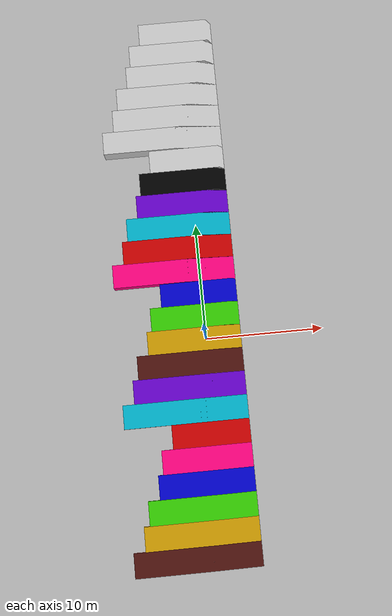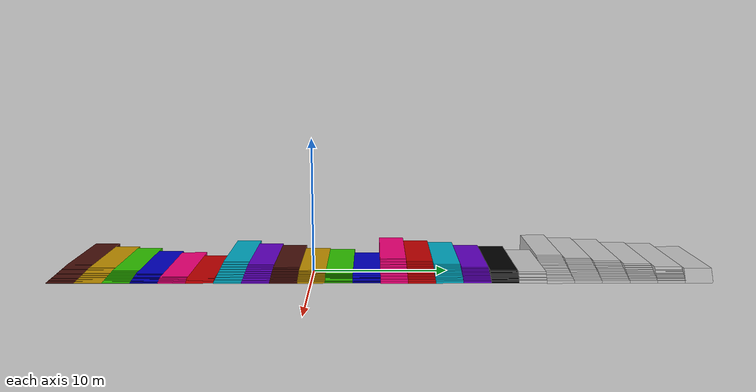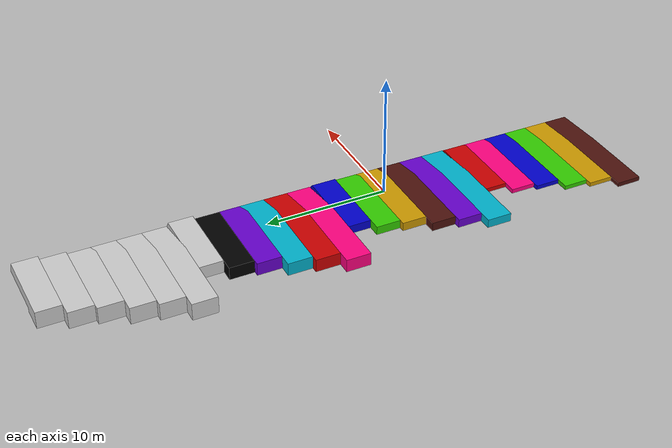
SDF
<?xml version="1.0" ?>
<sdf version="1.6">
  <model name="roboskel_slopeground">
    <static>true</static>

    <link name="slope6_2">
      <collision name="collision">
        <pose>0 -18 0.01 0 0 0</pose>
        <geometry>
          <mesh>
            <uri>model://roboskel_slopeground/meshes/slope6_2.dae</uri>
          </mesh>
        </geometry>
        <surface>
          <friction>
            <ode>
              <mu>1.0</mu>
              <mu2>1.0</mu2>
            </ode>
          </friction>
          <contact>
            <ode>
              <kp>10000000.0</kp>
              <kd>1.0</kd>
              <min_depth>0.001</min_depth>
              <max_vel>0.1</max_vel>
            </ode>
          </contact>
        </surface>
      </collision>
      <visual name="visual">
        <cast_shadows>false</cast_shadows>
        <pose>0 -18 0.01 0 0 0</pose>
        <geometry>
          <mesh>
            <uri>model://roboskel_slopeground/meshes/slope6_2.dae</uri>
          </mesh>
        </geometry>
        <material>
          <ambient>0.3 0.07 0.05 1</ambient>
          <diffuse>0.3 0.07 0.05 1</diffuse>
          <specular>0.1 0.1 0.1 1</specular>
          <emissive>0 0 0 0</emissive>
        </material>
      </visual>
    </link>

    <link name="slope5_2">
      <collision name="collision">
        <pose>0 -16 0.01 0 0 0</pose>
        <geometry>
          <mesh>
            <uri>model://roboskel_slopeground/meshes/slope5_2.dae</uri>
          </mesh>
        </geometry>
        <surface>
          <friction>
            <ode>
              <mu>1.0</mu>
              <mu2>1.0</mu2>
            </ode>
          </friction>
          <contact>
            <ode>
              <kp>10000000.0</kp>
              <kd>1.0</kd>
              <min_depth>0.001</min_depth>
              <max_vel>0.1</max_vel>
            </ode>
          </contact>
        </surface>
      </collision>
      <visual name="visual">
        <cast_shadows>false</cast_shadows>
        <pose>0 -16 0.01 0 0 0</pose>
        <geometry>
          <mesh>
            <uri>model://roboskel_slopeground/meshes/slope5_2.dae</uri>
          </mesh>
        </geometry>
        <material>
          <ambient>0.8 0.6 0 1</ambient>
          <diffuse>0.8 0.6 0 1</diffuse>
          <specular>0.1 0.1 0.1 1</specular>
          <emissive>0 0 0 0</emissive>
        </material>
      </visual>
    </link>

    <link name="slope4_2">
      <collision name="collision">
        <pose>0 -14 0.01 0 0 0</pose>
        <geometry>
          <mesh>
            <uri>model://roboskel_slopeground/meshes/slope4_2.dae</uri>
          </mesh>
        </geometry>
        <surface>
          <friction>
            <ode>
              <mu>1.0</mu>
              <mu2>1.0</mu2>
            </ode>
          </friction>
          <contact>
            <ode>
              <kp>10000000.0</kp>
              <kd>1.0</kd>
              <min_depth>0.001</min_depth>
              <max_vel>0.1</max_vel>
            </ode>
          </contact>
        </surface>
      </collision>
      <visual name="visual">
        <cast_shadows>false</cast_shadows>
        <pose>0 -14 0.01 0 0 0</pose>
        <geometry>
          <mesh>
            <uri>model://roboskel_slopeground/meshes/slope4_2.dae</uri>
          </mesh>
        </geometry>
        <material>
          <ambient>0.2 0.8 0 1</ambient>
          <diffuse>0.2 0.8 0 1</diffuse>
          <specular>0.1 0.1 0.1 1</specular>
          <emissive>0 0 0 0</emissive>
        </material>
      </visual>
    </link>

    <link name="slope3_2">
      <collision name="collision">
        <pose>0 -12 0.01 0 0 0</pose>
        <geometry>
          <mesh>
            <uri>model://roboskel_slopeground/meshes/slope3_2.dae</uri>
          </mesh>
        </geometry>
        <surface>
          <friction>
            <ode>
              <mu>1.0</mu>
              <mu2>1.0</mu2>
            </ode>
          </friction>
          <contact>
            <ode>
              <kp>10000000.0</kp>
              <kd>1.0</kd>
              <min_depth>0.001</min_depth>
              <max_vel>0.1</max_vel>
            </ode>
          </contact>
        </surface>
      </collision>
      <visual name="visual">
        <cast_shadows>false</cast_shadows>
        <pose>0 -12 0.01 0 0 0</pose>
        <geometry>
          <mesh>
            <uri>model://roboskel_slopeground/meshes/slope3_2.dae</uri>
          </mesh>
        </geometry>
        <material>
          <ambient>0 0 0.8 1</ambient>
          <diffuse>0 0 0.8 1</diffuse>
          <specular>0.1 0.1 0.1 1</specular>
          <emissive>0 0 0 0</emissive>
        </material>
      </visual>
    </link>

    <link name="slope2_2">
      <collision name="collision">
        <pose>0 -10 0.01 0 0 0</pose>
        <geometry>
          <mesh>
            <uri>model://roboskel_slopeground/meshes/slope2_2.dae</uri>
          </mesh>
        </geometry>
        <surface>
          <friction>
            <ode>
              <mu>1.0</mu>
              <mu2>1.0</mu2>
            </ode>
          </friction>
          <contact>
            <ode>
              <kp>10000000.0</kp>
              <kd>1.0</kd>
              <min_depth>0.001</min_depth>
              <max_vel>0.1</max_vel>
            </ode>
          </contact>
        </surface>
      </collision>
      <visual name="visual">
        <cast_shadows>false</cast_shadows>
        <pose>0 -10 0.01 0 0 0</pose>
        <geometry>
          <mesh>
            <uri>model://roboskel_slopeground/meshes/slope2_2.dae</uri>
          </mesh>
        </geometry>
        <material>
          <ambient>1 0 0.5 1</ambient>
          <diffuse>1 0 0.5 1</diffuse>
          <specular>0.1 0.1 0.1 1</specular>
          <emissive>0 0 0 0</emissive>
        </material>
      </visual>
    </link>

    <link name="slope1_2">
      <collision name="collision">
        <pose>0 -8 0.01 0 0 0</pose>
        <geometry>
          <mesh>
            <uri>model://roboskel_slopeground/meshes/slope1_2.dae</uri>
          </mesh>
        </geometry>
        <surface>
          <friction>
            <ode>
              <mu>1.0</mu>
              <mu2>1.0</mu2>
            </ode>
          </friction>
          <contact>
            <ode>
              <kp>10000000.0</kp>
              <kd>1.0</kd>
              <min_depth>0.001</min_depth>
              <max_vel>0.1</max_vel>
            </ode>
          </contact>
        </surface>
      </collision>
      <visual name="visual">
        <cast_shadows>false</cast_shadows>
        <pose>0 -8 0.01 0 0 0</pose>
        <geometry>
          <mesh>
            <uri>model://roboskel_slopeground/meshes/slope1_2.dae</uri>
          </mesh>
        </geometry>
        <material>
          <ambient>0.8 0 0 1</ambient>
          <diffuse>0.8 0 0 1</diffuse>
          <specular>0.1 0.1 0.1 1</specular>
          <emissive>0 0 0 0</emissive>
        </material>
      </visual>
    </link>

    <link name="slope6">
      <collision name="collision">
        <pose>0 -6 0.01 0 0 0</pose>
        <geometry>
          <mesh>
            <uri>model://roboskel_slopeground/meshes/slope6.dae</uri>
          </mesh>
        </geometry>
        <surface>
          <friction>
            <ode>
              <mu>1.0</mu>
              <mu2>1.0</mu2>
            </ode>
          </friction>
          <contact>
            <ode>
              <kp>10000000.0</kp>
              <kd>1.0</kd>
              <min_depth>0.001</min_depth>
              <max_vel>0.1</max_vel>
            </ode>
          </contact>
        </surface>
      </collision>
      <visual name="visual">
        <cast_shadows>false</cast_shadows>
        <pose>0 -6 0.01 0 0 0</pose>
        <geometry>
          <mesh>
            <uri>model://roboskel_slopeground/meshes/slope6.dae</uri>
          </mesh>
        </geometry>
        <material>
          <ambient>0 0.7 0.8 1</ambient>
          <diffuse>0 0.7 0.8 1</diffuse>
          <specular>0.1 0.1 0.1 1</specular>
          <emissive>0 0 0 0</emissive>
        </material>
      </visual>
    </link>

    <link name="slope5">
      <collision name="collision">
        <pose>0 -4 0.01 0 0 0</pose>
        <geometry>
          <mesh>
            <uri>model://roboskel_slopeground/meshes/slope5.dae</uri>
          </mesh>
        </geometry>
        <surface>
          <friction>
            <ode>
              <mu>1.0</mu>
              <mu2>1.0</mu2>
            </ode>
          </friction>
          <contact>
            <ode>
              <kp>10000000.0</kp>
              <kd>1.0</kd>
              <min_depth>0.001</min_depth>
              <max_vel>0.1</max_vel>
            </ode>
          </contact>
        </surface>
      </collision>
      <visual name="visual">
        <cast_shadows>false</cast_shadows>
        <pose>0 -4 0.01 0 0 0</pose>
        <geometry>
          <mesh>
            <uri>model://roboskel_slopeground/meshes/slope5.dae</uri>
          </mesh>
        </geometry>
        <material>
          <ambient>0.4 0 0.8 1</ambient>
          <diffuse>0.4 0 0.8 1</diffuse>
          <specular>0.1 0.1 0.1 1</specular>
          <emissive>0 0 0 0</emissive>
        </material>
      </visual>
    </link>

    <link name="slope4">
      <collision name="collision">
        <pose>0 -2 0.01 0 0 0</pose>
        <geometry>
          <mesh>
            <uri>model://roboskel_slopeground/meshes/slope4.dae</uri>
          </mesh>
        </geometry>
        <surface>
          <friction>
            <ode>
              <mu>1.0</mu>
              <mu2>1.0</mu2>
            </ode>
          </friction>
          <contact>
            <ode>
              <kp>10000000.0</kp>
              <kd>1.0</kd>
              <min_depth>0.001</min_depth>
              <max_vel>0.1</max_vel>
            </ode>
          </contact>
        </surface>
      </collision>
      <visual name="visual">
        <cast_shadows>false</cast_shadows>
        <pose>0 -2 0.01 0 0 0</pose>
        <geometry>
          <mesh>
            <uri>model://roboskel_slopeground/meshes/slope4.dae</uri>
          </mesh>
        </geometry>
        <material>
          <ambient>0.3 0.07 0.05 1</ambient>
          <diffuse>0.3 0.07 0.05 1</diffuse>
          <specular>0.1 0.1 0.1 1</specular>
          <emissive>0 0 0 0</emissive>
        </material>
      </visual>
    </link>

    <link name="slope3">
      <collision name="collision">
        <pose>0 0 0.01 0 0 0</pose>
        <geometry>
          <mesh>
            <uri>model://roboskel_slopeground/meshes/slope3.dae</uri>
          </mesh>
        </geometry>
        <surface>
          <friction>
            <ode>
              <mu>1.0</mu>
              <mu2>1.0</mu2>
            </ode>
          </friction>
          <contact>
            <ode>
              <kp>10000000.0</kp>
              <kd>1.0</kd>
              <min_depth>0.001</min_depth>
              <max_vel>0.1</max_vel>
            </ode>
          </contact>
        </surface>
      </collision>
      <visual name="visual">
        <cast_shadows>false</cast_shadows>
        <pose>0 0 0.01 0 0 0</pose>
        <geometry>
          <mesh>
            <uri>model://roboskel_slopeground/meshes/slope3.dae</uri>
          </mesh>
        </geometry>
        <material>
          <ambient>0.8 0.6 0 1</ambient>
          <diffuse>0.8 0.6 0 1</diffuse>
          <specular>0.1 0.1 0.1 1</specular>
          <emissive>0 0 0 0</emissive>
        </material>
      </visual>
    </link>

    <link name="slope2">
      <collision name="collision">
        <pose>0 2 0.01 0 0 0</pose>
        <geometry>
          <mesh>
            <uri>model://roboskel_slopeground/meshes/slope2.dae</uri>
          </mesh>
        </geometry>
        <surface>
          <friction>
            <ode>
              <mu>1.0</mu>
              <mu2>1.0</mu2>
            </ode>
          </friction>
          <contact>
            <ode>
              <kp>10000000.0</kp>
              <kd>1.0</kd>
              <min_depth>0.001</min_depth>
              <max_vel>0.1</max_vel>
            </ode>
          </contact>
        </surface>
      </collision>
      <visual name="visual">
        <cast_shadows>false</cast_shadows>
        <pose>0 2 0.01 0 0 0</pose>
        <geometry>
          <mesh>
            <uri>model://roboskel_slopeground/meshes/slope2.dae</uri>
          </mesh>
        </geometry>
        <material>
          <ambient>0.2 0.8 0 1</ambient>
          <diffuse>0.2 0.8 0 1</diffuse>
          <specular>0.1 0.1 0.1 1</specular>
          <emissive>0 0 0 0</emissive>
        </material>
      </visual>
    </link>

    <link name="slope1">
      <collision name="collision">
        <pose>0 4 0.01 0 0 0</pose>
        <geometry>
          <mesh>
            <uri>model://roboskel_slopeground/meshes/slope1.dae</uri>
          </mesh>
        </geometry>
        <surface>
          <friction>
            <ode>
              <mu>1.0</mu>
              <mu2>1.0</mu2>
            </ode>
          </friction>
          <contact>
            <ode>
              <kp>10000000.0</kp>
              <kd>1.0</kd>
              <min_depth>0.001</min_depth>
              <max_vel>0.1</max_vel>
            </ode>
          </contact>
        </surface>
      </collision>
      <visual name="visual">
        <cast_shadows>false</cast_shadows>
        <pose>0 4 0.01 0 0 0</pose>
        <geometry>
          <mesh>
            <uri>model://roboskel_slopeground/meshes/slope1.dae</uri>
          </mesh>
        </geometry>
        <material>
          <ambient>0 0 0.8 1</ambient>
          <diffuse>0 0 0.8 1</diffuse>
          <specular>0.1 0.1 0.1 1</specular>
          <emissive>0 0 0 0</emissive>
        </material>
      </visual>
    </link>

    <link name="slope6_3">
      <collision name="collision">
        <pose>0 6 0.01 0 0 0</pose>
        <geometry>
          <mesh>
            <uri>model://roboskel_slopeground/meshes/slope6_3.dae</uri>
          </mesh>
        </geometry>
        <surface>
          <friction>
            <ode>
              <mu>1.0</mu>
              <mu2>1.0</mu2>
            </ode>
          </friction>
          <contact>
            <ode>
              <kp>10000000.0</kp>
              <kd>1.0</kd>
              <min_depth>0.001</min_depth>
              <max_vel>0.1</max_vel>
            </ode>
          </contact>
        </surface>
      </collision>
      <visual name="visual">
        <cast_shadows>false</cast_shadows>
        <pose>0 6 0.01 0 0 0</pose>
        <geometry>
          <mesh>
            <uri>model://roboskel_slopeground/meshes/slope6_3.dae</uri>
          </mesh>
        </geometry>
        <material>
          <ambient>1 0 0.5 1</ambient>
          <diffuse>1 0 0.5 1</diffuse>
          <specular>0.1 0.1 0.1 1</specular>
          <emissive>0 0 0 0</emissive>
        </material>
      </visual>
    </link>

    <link name="slope5_3">
      <collision name="collision">
        <pose>0 8 0.01 0 0 0</pose>
        <geometry>
          <mesh>
            <uri>model://roboskel_slopeground/meshes/slope5_3.dae</uri>
          </mesh>
        </geometry>
        <surface>
          <friction>
            <ode>
              <mu>1.0</mu>
              <mu2>1.0</mu2>
            </ode>
          </friction>
          <contact>
            <ode>
              <kp>10000000.0</kp>
              <kd>1.0</kd>
              <min_depth>0.001</min_depth>
              <max_vel>0.1</max_vel>
            </ode>
          </contact>
        </surface>
      </collision>
      <visual name="visual">
        <cast_shadows>false</cast_shadows>
        <pose>0 8 0.01 0 0 0</pose>
        <geometry>
          <mesh>
            <uri>model://roboskel_slopeground/meshes/slope5_3.dae</uri>
          </mesh>
        </geometry>
        <material>
          <ambient>0.8 0 0 1</ambient>
          <diffuse>0.8 0 0 1</diffuse>
          <specular>0.1 0.1 0.1 1</specular>
          <emissive>0 0 0 0</emissive>
        </material>
      </visual>
    </link>

    <link name="slope4_3">
      <collision name="collision">
        <pose>0 10 0.01 0 0 0</pose>
        <geometry>
          <mesh>
            <uri>model://roboskel_slopeground/meshes/slope4_3.dae</uri>
          </mesh>
        </geometry>
        <surface>
          <friction>
            <ode>
              <mu>1.0</mu>
              <mu2>1.0</mu2>
            </ode>
          </friction>
          <contact>
            <ode>
              <kp>10000000.0</kp>
              <kd>1.0</kd>
              <min_depth>0.001</min_depth>
              <max_vel>0.1</max_vel>
            </ode>
          </contact>
        </surface>
      </collision>
      <visual name="visual">
        <cast_shadows>false</cast_shadows>
        <pose>0 10 0.01 0 0 0</pose>
        <geometry>
          <mesh>
            <uri>model://roboskel_slopeground/meshes/slope4_3.dae</uri>
          </mesh>
        </geometry>
        <material>
          <ambient>0 0.7 0.8 1</ambient>
          <diffuse>0 0.7 0.8 1</diffuse>
          <specular>0.1 0.1 0.1 1</specular>
          <emissive>0 0 0 0</emissive>
        </material>
      </visual>
    </link>

    <link name="slope3_3">
      <collision name="collision">
        <pose>0 12 0.01 0 0 0</pose>
        <geometry>
          <mesh>
            <uri>model://roboskel_slopeground/meshes/slope3_3.dae</uri>
          </mesh>
        </geometry>
        <surface>
          <friction>
            <ode>
              <mu>1.0</mu>
              <mu2>1.0</mu2>
            </ode>
          </friction>
          <contact>
            <ode>
              <kp>10000000.0</kp>
              <kd>1.0</kd>
              <min_depth>0.001</min_depth>
              <max_vel>0.1</max_vel>
            </ode>
          </contact>
        </surface>
      </collision>
      <visual name="visual">
        <cast_shadows>false</cast_shadows>
        <pose>0 12 0.01 0 0 0</pose>
        <geometry>
          <mesh>
            <uri>model://roboskel_slopeground/meshes/slope3_3.dae</uri>
          </mesh>
        </geometry>
        <material>
          <ambient>0.4 0 0.8 1</ambient>
          <diffuse>0.4 0 0.8 1</diffuse>
          <specular>0.1 0.1 0.1 1</specular>
          <emissive>0 0 0 0</emissive>
        </material>
      </visual>
    </link>

    <link name="slope2_3">
      <collision name="collision">
        <pose>0 14 0.01 0 0 0</pose>
        <geometry>
          <mesh>
            <uri>model://roboskel_slopeground/meshes/slope2_3.dae</uri>
          </mesh>
        </geometry>
        <surface>
          <friction>
            <ode>
              <mu>1.0</mu>
              <mu2>1.0</mu2>
            </ode>
          </friction>
          <contact>
            <ode>
              <kp>10000000.0</kp>
              <kd>1.0</kd>
              <min_depth>0.001</min_depth>
              <max_vel>0.1</max_vel>
            </ode>
          </contact>
        </surface>
      </collision>
      <visual name="visual">
        <cast_shadows>false</cast_shadows>
        <pose>0 14 0.01 0 0 0</pose>
        <geometry>
          <mesh>
            <uri>model://roboskel_slopeground/meshes/slope2_3.dae</uri>
          </mesh>
        </geometry>
        <material>
          <ambient>0 0 0 1</ambient>
          <diffuse>0 0 0 1</diffuse>
          <specular>0.1 0.1 0.1 1</specular>
          <emissive>0 0 0 0</emissive>
        </material>
      </visual>
    </link>

    <link name="slope1_3">
      <collision name="collision">
        <pose>0 16 0.01 0 0 0</pose>
        <geometry>
          <mesh>
            <uri>model://roboskel_slopeground/meshes/slope1_3.dae</uri>
          </mesh>
        </geometry>
        <surface>
          <friction>
            <ode>
              <mu>1.0</mu>
              <mu2>1.0</mu2>
            </ode>
          </friction>
          <contact>
            <ode>
              <kp>10000000.0</kp>
              <kd>1.0</kd>
              <min_depth>0.001</min_depth>
              <max_vel>0.1</max_vel>
            </ode>
          </contact>
        </surface>
      </collision>
      <visual name="visual">
        <cast_shadows>false</cast_shadows>
        <pose>0 16 0.01 0 0 0</pose>
        <geometry>
          <mesh>
            <uri>model://roboskel_slopeground/meshes/slope1_3.dae</uri>
          </mesh>
        </geometry>
        <material>
          <ambient>0.8 0.8 0.8 1</ambient>
          <diffuse>0.8 0.8 0.8 1</diffuse>
          <specular>0.1 0.1 0.1 1</specular>
          <emissive>0 0 0 0</emissive>
        </material>
      </visual>
    </link>

    <link name="slope6_4">
      <collision name="collision">
        <pose>0 18 0.01 0 0 0</pose>
        <geometry>
          <mesh>
            <uri>model://roboskel_slopeground/meshes/slope6_4.dae</uri>
          </mesh>
        </geometry>
        <surface>
          <friction>
            <ode>
              <mu>1.0</mu>
              <mu2>1.0</mu2>
            </ode>
          </friction>
          <contact>
            <ode>
              <kp>10000000.0</kp>
              <kd>1.0</kd>
              <min_depth>0.001</min_depth>
              <max_vel>0.1</max_vel>
            </ode>
          </contact>
        </surface>
      </collision>
      <visual name="visual">
        <cast_shadows>false</cast_shadows>
        <pose>0 18 0.01 0 0 0</pose>
        <geometry>
          <mesh>
            <uri>model://roboskel_slopeground/meshes/slope6_4.dae</uri>
          </mesh>
        </geometry>
        <material>
          <ambient>0.8 0.8 0.8 1</ambient>
          <diffuse>0.8 0.8 0.8 1</diffuse>
          <specular>0.1 0.1 0.1 1</specular>
          <emissive>0 0 0 0</emissive>
        </material>
      </visual>
    </link>

    <link name="slope5_4">
      <collision name="collision">
        <pose>0 20 0.01 0 0 0</pose>
        <geometry>
          <mesh>
            <uri>model://roboskel_slopeground/meshes/slope5_4.dae</uri>
          </mesh>
        </geometry>
        <surface>
          <friction>
            <ode>
              <mu>1.0</mu>
              <mu2>1.0</mu2>
            </ode>
          </friction>
          <contact>
            <ode>
              <kp>10000000.0</kp>
              <kd>1.0</kd>
              <min_depth>0.001</min_depth>
              <max_vel>0.1</max_vel>
            </ode>
          </contact>
        </surface>
      </collision>
      <visual name="visual">
        <cast_shadows>false</cast_shadows>
        <pose>0 20 0.01 0 0 0</pose>
        <geometry>
          <mesh>
            <uri>model://roboskel_slopeground/meshes/slope5_4.dae</uri>
          </mesh>
        </geometry>
        <material>
          <ambient>0.8 0.8 0.8 1</ambient>
          <diffuse>0.8 0.8 0.8 1</diffuse>
          <specular>0.1 0.1 0.1 1</specular>
          <emissive>0 0 0 0</emissive>
        </material>
      </visual>
    </link>

    <link name="slope4_4">
      <collision name="collision">
        <pose>0 22 0.01 0 0 0</pose>
        <geometry>
          <mesh>
            <uri>model://roboskel_slopeground/meshes/slope4_4.dae</uri>
          </mesh>
        </geometry>
        <surface>
          <friction>
            <ode>
              <mu>1.0</mu>
              <mu2>1.0</mu2>
            </ode>
          </friction>
          <contact>
            <ode>
              <kp>10000000.0</kp>
              <kd>1.0</kd>
              <min_depth>0.001</min_depth>
              <max_vel>0.1</max_vel>
            </ode>
          </contact>
        </surface>
      </collision>
      <visual name="visual">
        <cast_shadows>false</cast_shadows>
        <pose>0 22 0.01 0 0 0</pose>
        <geometry>
          <mesh>
            <uri>model://roboskel_slopeground/meshes/slope4_4.dae</uri>
          </mesh>
        </geometry>
        <material>
          <ambient>0.8 0.8 0.8 1</ambient>
          <diffuse>0.8 0.8 0.8 1</diffuse>
          <specular>0.1 0.1 0.1 1</specular>
          <emissive>0 0 0 0</emissive>
        </material>
      </visual>
    </link>

    <link name="slope3_4">
      <collision name="collision">
        <pose>0 24 0.01 0 0 0</pose>
        <geometry>
          <mesh>
            <uri>model://roboskel_slopeground/meshes/slope3_4.dae</uri>
          </mesh>
        </geometry>
        <surface>
          <friction>
            <ode>
              <mu>1.0</mu>
              <mu2>1.0</mu2>
            </ode>
          </friction>
          <contact>
            <ode>
              <kp>10000000.0</kp>
              <kd>1.0</kd>
              <min_depth>0.001</min_depth>
              <max_vel>0.1</max_vel>
            </ode>
          </contact>
        </surface>
      </collision>
      <visual name="visual">
        <cast_shadows>false</cast_shadows>
        <pose>0 24 0.01 0 0 0</pose>
        <geometry>
          <mesh>
            <uri>model://roboskel_slopeground/meshes/slope3_4.dae</uri>
          </mesh>
        </geometry>
        <material>
          <ambient>0.8 0.8 0.8 1</ambient>
          <diffuse>0.8 0.8 0.8 1</diffuse>
          <specular>0.1 0.1 0.1 1</specular>
          <emissive>0 0 0 0</emissive>
        </material>
      </visual>
    </link>

    <link name="slope2_4">
      <collision name="collision">
        <pose>0 26 0.01 0 0 0</pose>
        <geometry>
          <mesh>
            <uri>model://roboskel_slopeground/meshes/slope2_4.dae</uri>
          </mesh>
        </geometry>
        <surface>
          <friction>
            <ode>
              <mu>1.0</mu>
              <mu2>1.0</mu2>
            </ode>
          </friction>
          <contact>
            <ode>
              <kp>10000000.0</kp>
              <kd>1.0</kd>
              <min_depth>0.001</min_depth>
              <max_vel>0.1</max_vel>
            </ode>
          </contact>
        </surface>
      </collision>
      <visual name="visual">
        <cast_shadows>false</cast_shadows>
        <pose>0 26 0.01 0 0 0</pose>
        <geometry>
          <mesh>
            <uri>model://roboskel_slopeground/meshes/slope2_4.dae</uri>
          </mesh>
        </geometry>
        <material>
          <ambient>0.8 0.8 0.8 1</ambient>
          <diffuse>0.8 0.8 0.8 1</diffuse>
          <specular>0.1 0.1 0.1 1</specular>
          <emissive>0 0 0 0</emissive>
        </material>
      </visual>
    </link>

    <link name="slope1_4">
      <collision name="collision">
        <pose>0 28 0.01 0 0 0</pose>
        <geometry>
          <mesh>
            <uri>model://roboskel_slopeground/meshes/slope1_4.dae</uri>
          </mesh>
        </geometry>
        <surface>
          <friction>
            <ode>
              <mu>1.0</mu>
              <mu2>1.0</mu2>
            </ode>
          </friction>
          <contact>
            <ode>
              <kp>10000000.0</kp>
              <kd>1.0</kd>
              <min_depth>0.001</min_depth>
              <max_vel>0.1</max_vel>
            </ode>
          </contact>
        </surface>
      </collision>
      <visual name="visual">
        <cast_shadows>false</cast_shadows>
        <pose>0 28 0.01 0 0 0</pose>
        <geometry>
          <mesh>
            <uri>model://roboskel_slopeground/meshes/slope1_4.dae</uri>
          </mesh>
        </geometry>
        <material>
          <ambient>0.8 0.8 0.8 1</ambient>
          <diffuse>0.8 0.8 0.8 1</diffuse>
          <specular>0.1 0.1 0.1 1</specular>
          <emissive>0 0 0 0</emissive>
        </material>
      </visual>
    </link>

  </model>
</sdf>
